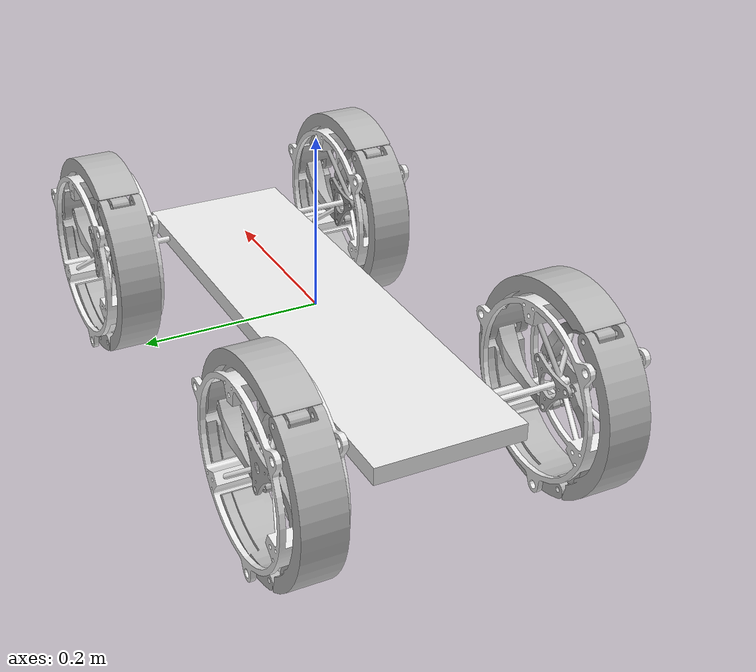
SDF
<?xml version='1.0'?>
<sdf version='1.7'>
  <model name='tryd'>
    <!-- Prevent internal collisions between leg parts to avoid jitter -->
    <self_collide>false</self_collide>

    <!-- BASE -->
    <link name='base_footprint'>
      <pose>0 0 0 0 0 0</pose>
    </link>

    <joint name='base_joint' type='fixed'>
      <parent>base_footprint</parent>
      <child>base_link</child>
    </joint>

    <link name='base_link'>
      <pose>0 0 0 0 0 0</pose>
      <inertial>
        <pose>-8.94907244384436E-06 1.56777004396414E-08 -0.0099999786979822 0 0 0</pose>
        <mass>5.51387120943428</mass>
        <inertia>
          <ixx>0.0134468927294375</ixx>
          <ixy>-2.59140603594283E-08</ixy>
          <ixz>-3.51546984955843E-08</ixz>
          <iyy>0.165475287417608</iyy>
          <iyz>-1.62022466077164E-11</iyz>
          <izz>0.178554327537039</izz>
        </inertia>
      </inertial>
      <visual name='visual'>
        <geometry>
          <mesh>
            <uri>model://tryd/meshes/base_link.STL</uri>
          </mesh>
        </geometry>
        <material>
          <script>
            <name>Gazebo/White</name>
            <uri>file://media/materials/scripts/gazebo.material</uri>
          </script>
        </material>
      </visual>
      <collision name='collision'>
        <geometry>
          <mesh>
            <uri>model://tryd/meshes/base_link.STL</uri>
          </mesh>
        </geometry>
      </collision>
    </link>

    <!-- RIGHT FRONT (RF) LEG -->
    <joint name='j2_rf' type='revolute'>
      <pose relative_to='base_link'>0.239999999999999 -0.128 -0.0100000000000003 0 0 0</pose>
      <parent>base_link</parent>
      <child>l2_rf</child>
      <axis>
        <xyz>0 1 0</xyz>
        <limit>
          <lower>-50</lower>
          <upper>50</upper>
          <effort>100</effort>
          <velocity>50</velocity>
        </limit>
      </axis>
    </joint>

    <link name='l2_rf'>
      <pose relative_to='j2_rf'>0 0 0 0 0 0</pose>
      <inertial>
        <pose>-2.08804529222562E-10 -0.0291950635463956 2.32404020325735E-11 0 0 0</pose>
        <mass>0.196608556113688</mass>
        <inertia>
          <ixx>0.000799</ixx>
          <ixy>0.000000</ixy>
          <ixz>0.000000</ixz>
          <iyy>0.001288</iyy>
          <iyz>0.000000</iyz>
          <izz>0.000799</izz>
        </inertia>
      </inertial>
      <visual name='v'>
        <geometry>
          <mesh>
            <uri>model://tryd/meshes/l2_rf.STL</uri>
          </mesh>
        </geometry>
        <material>
          <script>
            <name>Gazebo/White</name>
            <uri>file://media/materials/scripts/gazebo.material</uri>
          </script>
        </material>
      </visual>
      <collision name='c'>
        <geometry>
          <mesh>
            <uri>model://tryd/meshes/l2_rf.STL</uri>
          </mesh>
        </geometry>
      </collision>
    </link>

    <joint name='j1_rf' type='revolute'>
      <pose relative_to='l2_rf'>0 -0.021 0 0 0 0</pose>
      <parent>l2_rf</parent>
      <child>l1_rf</child>
      <axis>
        <xyz>0 1 0</xyz>
        <limit>
          <lower>-1</lower>
          <upper>1</upper>
          <effort>100</effort>
          <velocity>50</velocity>
        </limit>
      </axis>
    </joint>

    <link name='l1_rf'>
      <pose relative_to='j1_rf'>0 0 0 0 0 0</pose>
      <inertial>
        <pose>-4.9960036108132E-16 -0.0161380765502627 -2.57744127660233E-16 0 0 0</pose>
        <mass>0.0354240975198173</mass>
        <inertia>
          <ixx>0.000012</ixx>
          <ixy>0.000000</ixy>
          <ixz>0.000000</ixz>
          <iyy>0.000015</iyy>
          <iyz>0.000000</iyz>
          <izz>0.000012</izz>
        </inertia>
      </inertial>
      <visual name='v'>
        <geometry>
          <mesh>
            <uri>model://tryd/meshes/l1_rf.STL</uri>
          </mesh>
        </geometry>
        <material>
          <script>
            <name>Gazebo/Grey</name>
            <uri>file://media/materials/scripts/gazebo.material</uri>
          </script>
        </material>
      </visual>
      <collision name='c'>
        <geometry>
          <mesh>
            <uri>model://tryd/meshes/l1_rf.STL</uri>
          </mesh>
        </geometry>
      </collision>
    </link>

    <!-- RF BRANCHES L3 -->
    <joint name='j3_rf1' type='revolute'>
      <pose relative_to='l1_rf'>0.022146669767068 0 0.0202367244935637 0 0 0</pose>
      <parent>l1_rf</parent>
      <child>l3_rf1</child>
      <axis>
        <xyz>0 1 0</xyz>
        <limit>
          <lower>-1.57</lower>
          <upper>1.57</upper>
          <effort>5</effort>
          <velocity>2</velocity>
        </limit>
      </axis>
    </joint>

    <link name='l3_rf1'>
      <pose relative_to='j3_rf1'>0 0 0 0 0 0</pose>
      <inertial>
        <pose>-0.0398905245666624 -0.0140000194157354 0.0482877588732501 0 0 0</pose>
        <mass>0.0557316685279916</mass>
        <inertia>
          <ixx>0.000029</ixx>
          <ixy>0.000000</ixy>
          <ixz>-0.000032</ixz>
          <iyy>0.000071</iyy>
          <iyz>0.000000</iyz>
          <izz>0.000044</izz>
        </inertia>
      </inertial>
      <visual name='v'>
        <geometry>
          <mesh>
            <uri>model://tryd/meshes/l3_rf1.STL</uri>
          </mesh>
        </geometry>
      </visual>
      <collision name='c'>
        <geometry>
          <mesh>
            <uri>model://tryd/meshes/l3_rf1.STL</uri>
          </mesh>
        </geometry>
      </collision>
    </link>

    <joint name='j3_rf2' type='revolute'>
      <pose relative_to='l1_rf'>-0.0285988523843481 0 0.00906121638072432 0 0 0</pose>
      <parent>l1_rf</parent>
      <child>l3_rf2</child>
      <axis>
        <xyz>0 1 0</xyz>
        <limit>
          <lower>-1.57</lower>
          <upper>1.57</upper>
          <effort>5</effort>
          <velocity>2</velocity>
        </limit>
      </axis>
    </joint>

    <link name='l3_rf2'>
      <pose relative_to='j3_rf2'>0 0 0 0 0 0</pose>
      <inertial>
        <pose>-0.0218731622438092 -0.0140000036638266 -0.0586901178612239 0 0 0</pose>
        <mass>0.0557315697331534</mass>
        <inertia>
          <ixx>0.000068</ixx>
          <ixy>0.000000</ixy>
          <ixz>0.000009</ixz>
          <iyy>0.000071</iyy>
          <iyz>0.000000</iyz>
          <izz>0.000006</izz>
        </inertia>
      </inertial>
      <visual name='v'>
        <geometry>
          <mesh>
            <uri>model://tryd/meshes/l3_rf2.STL</uri>
          </mesh>
        </geometry>
      </visual>
      <collision name='c'>
        <geometry>
          <mesh>
            <uri>model://tryd/meshes/l3_rf2.STL</uri>
          </mesh>
        </geometry>
      </collision>
    </link>

    <joint name='j3_rf3' type='revolute'>
      <pose relative_to='l1_rf'>0.00645218261727812 0 -0.0292979408742882 0 0 0</pose>
      <parent>l1_rf</parent>
      <child>l3_rf3</child>
      <axis>
        <xyz>0 1 0</xyz>
        <limit>
          <lower>-1.57</lower>
          <upper>1.57</upper>
          <effort>5</effort>
          <velocity>2</velocity>
        </limit>
      </axis>
    </joint>

    <link name='l3_rf3'>
      <pose relative_to='j3_rf3'>0 0 0 0 0 0</pose>
      <inertial>
        <pose>0.0617637116997839 -0.0140000031232566 0.0104023387554542 0 0 0</pose>
        <mass>0.0557315625814883</mass>
        <inertia>
          <ixx>0.000013</ixx>
          <ixy>0.000000</ixy>
          <ixz>0.000022</ixz>
          <iyy>0.000071</iyy>
          <iyz>0.000000</iyz>
          <izz>0.000061</izz>
        </inertia>
      </inertial>
      <visual name='v'>
        <geometry>
          <mesh>
            <uri>model://tryd/meshes/l3_rf3.STL</uri>
          </mesh>
        </geometry>
      </visual>
      <collision name='c'>
        <geometry>
          <mesh>
            <uri>model://tryd/meshes/l3_rf3.STL</uri>
          </mesh>
        </geometry>
      </collision>
    </link>

    <!-- RF BRANCHES L4 -->
    <joint name='j4_rf1' type='revolute'>
      <pose relative_to='l2_rf'>-0.0833137378878261 0 0.0687227842797317 0 0 0</pose>
      <parent>l2_rf</parent>
      <child>l4_rf1</child>
      <axis>
        <xyz>0 1 0</xyz>
        <limit>
          <lower>-1.57</lower>
          <upper>1.57</upper>
          <effort>5</effort>
          <velocity>2</velocity>
        </limit>
      </axis>
    </joint>

    <link name='l4_rf1'>
      <pose relative_to='j4_rf1'>0 0 0 0 0 0</pose>
      <inertial>
        <pose>-0.00925877524108323 -0.0350000059049338 -0.0714258099295615 0 0 0</pose>
        <mass>0.505772953738006</mass>
        <inertia>
          <ixx>0.001678</ixx>
          <ixy>0.000000</ixy>
          <ixz>-0.000035</ixz>
          <iyy>0.001703</iyy>
          <iyz>0.000000</iyz>
          <izz>0.000215</izz>
        </inertia>
      </inertial>
      <visual name='v'>
        <geometry>
          <mesh>
            <uri>model://tryd/meshes/l4_rf1.STL</uri>
          </mesh>
        </geometry>
      </visual>
      <collision name='c'>
        <geometry>
          <mesh>
            <uri>model://tryd/meshes/l4_rf1.STL</uri>
          </mesh>
        </geometry>
        <surface>
          <friction>
            <ode>
              <mu>0.6</mu>
              <mu2>0.6</mu2>
            </ode>
          </friction>
        </surface>
      </collision>
    </link>

    <joint name='j4_rf2' type='revolute'>
      <pose relative_to='l2_rf'>-0.0178588080611313 0 -0.106513205634962 0 0 0</pose>
      <parent>l2_rf</parent>
      <child>l4_rf2</child>
      <axis>
        <xyz>0 1 0</xyz>
        <limit>
          <lower>-1.57</lower>
          <upper>1.57</upper>
          <effort>5</effort>
          <velocity>2</velocity>
        </limit>
      </axis>
    </joint>

    <link name='l4_rf2'>
      <pose relative_to='j4_rf2'>0 0 0 0 0 0</pose>
      <inertial>
        <pose>0.0664859496958133 -0.0350000060684984 0.0276945733610566 0 0 0</pose>
        <mass>0.505772947420474</mass>
        <inertia>
          <ixx>0.000611</ixx>
          <ixy>0.000000</ixy>
          <ixz>0.000651</ixz>
          <iyy>0.001703</iyy>
          <iyz>0.000000</iyz>
          <izz>0.001282</izz>
        </inertia>
      </inertial>
      <visual name='v'>
        <geometry>
          <mesh>
            <uri>model://tryd/meshes/l4_rf2.STL</uri>
          </mesh>
        </geometry>
      </visual>
      <collision name='c'>
        <geometry>
          <mesh>
            <uri>model://tryd/meshes/l4_rf2.STL</uri>
          </mesh>
        </geometry>
        <surface>
          <friction>
            <ode>
              <mu>0.6</mu>
              <mu2>0.6</mu2>
            </ode>
          </friction>
        </surface>
      </collision>
    </link>

    <joint name='j4_rf3' type='revolute'>
      <pose relative_to='l2_rf'>0.101172545948959 0 0.0377904213552305 0 0 0</pose>
      <parent>l2_rf</parent>
      <child>l4_rf3</child>
      <axis>
        <xyz>0 1 0</xyz>
        <limit>
          <lower>-1.57</lower>
          <upper>1.57</upper>
          <effort>5</effort>
          <velocity>2</velocity>
        </limit>
      </axis>
    </joint>

    <link name='l4_rf3'>
      <pose relative_to='j4_rf3'>0 0 0 0 0 0</pose>
      <inertial>
        <pose>-0.0572271801527385 -0.0350000060490628 0.0437312355375022 0 0 0</pose>
        <mass>0.505772946196365</mass>
        <inertia>
          <ixx>0.000551</ixx>
          <ixy>0.000000</ixy>
          <ixz>-0.000616</ixz>
          <iyy>0.001703</iyy>
          <iyz>0.000000</iyz>
          <izz>0.001342</izz>
        </inertia>
      </inertial>
      <visual name='v'>
        <geometry>
          <mesh>
            <uri>model://tryd/meshes/l4_rf3.STL</uri>
          </mesh>
        </geometry>
      </visual>
      <collision name='c'>
        <geometry>
          <mesh>
            <uri>model://tryd/meshes/l4_rf3.STL</uri>
          </mesh>
        </geometry>
        <surface>
          <friction>
            <ode>
              <mu>0.6</mu>
              <mu2>0.6</mu2>
            </ode>
          </friction>
        </surface>
      </collision>
    </link>

    <!-- LEFT FRONT (LF) LEG -->
    <joint name='j2_lf' type='revolute'>
      <pose relative_to='base_link'>0.239999999999999 0.128 -0.0100000000000002 0 0 0</pose>
      <parent>base_link</parent>
      <child>l2_lf</child>
      <axis>
        <xyz>0 1 0</xyz>
        <limit>
          <lower>-50</lower>
          <upper>50</upper>
          <effort>100</effort>
          <velocity>50</velocity>
        </limit>
      </axis>
    </joint>

    <link name='l2_lf'>
      <pose relative_to='j2_lf'>0 0 0 0 0 0</pose>
      <inertial>
        <pose>-6.09346184621273E-11 0.0291950636027025 2.85822192691364E-10 0 0 0</pose>
        <mass>0.196608558229839</mass>
        <inertia>
          <ixx>0.000799</ixx>
          <ixy>0.000000</ixy>
          <ixz>0.000000</ixz>
          <iyy>0.001288</iyy>
          <iyz>0.000000</iyz>
          <izz>0.000799</izz>
        </inertia>
      </inertial>
      <visual name='v'>
        <geometry>
          <mesh>
            <uri>model://tryd/meshes/l2_lf.STL</uri>
          </mesh>
        </geometry>
        <material>
          <script>
            <name>Gazebo/White</name>
            <uri>file://media/materials/scripts/gazebo.material</uri>
          </script>
        </material>
      </visual>
      <collision name='c'>
        <geometry>
          <mesh>
            <uri>model://tryd/meshes/l2_lf.STL</uri>
          </mesh>
        </geometry>
      </collision>
    </link>

    <joint name='j1_lf' type='revolute'>
      <pose relative_to='l2_lf'>0 0.021 0 0 0 0</pose>
      <parent>l2_lf</parent>
      <child>l1_lf</child>
      <axis>
        <xyz>0 1 0</xyz>
        <limit>
          <lower>-1</lower>
          <upper>1</upper>
          <effort>100</effort>
          <velocity>50</velocity>
        </limit>
      </axis>
    </joint>

    <link name='l1_lf'>
      <pose relative_to='j1_lf'>0 0 0 0 0 0</pose>
      <inertial>
        <pose>-2.22044604925031E-16 0.0161380765502627 -4.56316275036442E-16 0 0 0</pose>
        <mass>0.0354240975198172</mass>
        <inertia>
          <ixx>0.000012</ixx>
          <ixy>0.000000</ixy>
          <ixz>0.000000</ixz>
          <iyy>0.000015</iyy>
          <iyz>0.000000</iyz>
          <izz>0.000012</izz>
        </inertia>
      </inertial>
      <visual name='v'>
        <geometry>
          <mesh>
            <uri>model://tryd/meshes/l1_lf.STL</uri>
          </mesh>
        </geometry>
      </visual>
      <collision name='c'>
        <geometry>
          <mesh>
            <uri>model://tryd/meshes/l1_lf.STL</uri>
          </mesh>
        </geometry>
      </collision>
    </link>

    <!-- LF BRANCHES L3 -->
    <joint name='j3_lf1' type='revolute'>
      <pose relative_to='l1_lf'>0.0221395963706941 0 0.0202444627625115 0 0 0</pose>
      <parent>l1_lf</parent>
      <child>l3_lf1</child>
      <axis>
        <xyz>0 1 0</xyz>
        <limit>
          <lower>-1.57</lower>
          <upper>1.57</upper>
          <effort>5</effort>
          <velocity>2</velocity>
        </limit>
      </axis>
    </joint>

    <link name='l3_lf1'>
      <pose relative_to='j3_lf1'>0 0 0 0 0 0</pose>
      <inertial>
        <pose>-0.039890520885456 0.0139999805842647 0.0482877619143034 0 0 0</pose>
        <mass>0.0557316685279918</mass>
        <inertia>
          <ixx>0.000029</ixx>
          <ixy>0.000000</ixy>
          <ixz>-0.000032</ixz>
          <iyy>0.000071</iyy>
          <iyz>0.000000</iyz>
          <izz>0.000044</izz>
        </inertia>
      </inertial>
      <visual name='v'>
        <geometry>
          <mesh>
            <uri>model://tryd/meshes/l3_lf1.STL</uri>
          </mesh>
        </geometry>
      </visual>
      <collision name='c'>
        <geometry>
          <mesh>
            <uri>model://tryd/meshes/l3_lf1.STL</uri>
          </mesh>
        </geometry>
      </collision>
    </link>

    <joint name='j3_lf2' type='revolute'>
      <pose relative_to='l1_lf'>-0.0286020172236509 0 0.00905122150529837 0 0 0</pose>
      <parent>l1_lf</parent>
      <child>l3_lf2</child>
      <axis>
        <xyz>0 1 0</xyz>
        <limit>
          <lower>-1.57</lower>
          <upper>1.57</upper>
          <effort>5</effort>
          <velocity>2</velocity>
        </limit>
      </axis>
    </joint>

    <link name='l3_lf2'>
      <pose relative_to='j3_lf2'>0 0 0 0 0 0</pose>
      <inertial>
        <pose>-0.0218731667180357 0.0139999963361724 -0.0586901161937509 0 0 0</pose>
        <mass>0.0557315697331413</mass>
        <inertia>
          <ixx>0.000068</ixx>
          <ixy>0.000000</ixy>
          <ixz>0.000009</ixz>
          <iyy>0.000071</iyy>
          <iyz>0.000000</iyz>
          <izz>0.000006</izz>
        </inertia>
      </inertial>
      <visual name='v'>
        <geometry>
          <mesh>
            <uri>model://tryd/meshes/l3_lf2.STL</uri>
          </mesh>
        </geometry>
      </visual>
      <collision name='c'>
        <geometry>
          <mesh>
            <uri>model://tryd/meshes/l3_lf2.STL</uri>
          </mesh>
        </geometry>
      </collision>
    </link>

    <joint name='j3_lf3' type='revolute'>
      <pose relative_to='l1_lf'>0.00646242085295634 0 -0.0292956842678118 0 0 0</pose>
      <parent>l1_lf</parent>
      <child>l3_lf3</child>
      <axis>
        <xyz>0 1 0</xyz>
        <limit>
          <lower>-1.57</lower>
          <upper>1.57</upper>
          <effort>5</effort>
          <velocity>2</velocity>
        </limit>
      </axis>
    </joint>

    <link name='l3_lf3'>
      <pose relative_to='j3_lf3'>0 0 0 0 0 0</pose>
      <inertial>
        <pose>0.0617637124928111 0.0139999968767433 0.0104023340469134 0 0 0</pose>
        <mass>0.0557315625814885</mass>
        <inertia>
          <ixx>0.000013</ixx>
          <ixy>0.000000</ixy>
          <ixz>0.000022</ixz>
          <iyy>0.000071</iyy>
          <iyz>0.000000</iyz>
          <izz>0.000061</izz>
        </inertia>
      </inertial>
      <visual name='v'>
        <geometry>
          <mesh>
            <uri>model://tryd/meshes/l3_lf3.STL</uri>
          </mesh>
        </geometry>
      </visual>
      <collision name='c'>
        <geometry>
          <mesh>
            <uri>model://tryd/meshes/l3_lf3.STL</uri>
          </mesh>
        </geometry>
      </collision>
    </link>

    <!-- LF BRANCHES L4 -->
    <joint name='j4_lf1' type='revolute'>
      <pose relative_to='l2_lf'>-0.0833137378878259 0 0.068722784279732 0 0 0</pose>
      <parent>l2_lf</parent>
      <child>l4_lf1</child>
      <axis>
        <xyz>0 1 0</xyz>
        <limit>
          <lower>-1.57</lower>
          <upper>1.57</upper>
          <effort>5</effort>
          <velocity>2</velocity>
        </limit>
      </axis>
    </joint>

    <link name='l4_lf1'>
      <pose relative_to='j4_lf1'>0 0 0 0 0 0</pose>
      <inertial>
        <pose>-0.00923381104475832 0.034999994095162 -0.0714290415484533 0 0 0</pose>
        <mass>0.505772953745336</mass>
        <inertia>
          <ixx>0.001678</ixx>
          <ixy>0.000000</ixy>
          <ixz>-0.000035</ixz>
          <iyy>0.001703</iyy>
          <iyz>0.000000</iyz>
          <izz>0.000215</izz>
        </inertia>
      </inertial>
      <visual name='v'>
        <geometry>
          <mesh>
            <uri>model://tryd/meshes/l4_lf1.STL</uri>
          </mesh>
        </geometry>
      </visual>
      <collision name='c'>
        <geometry>
          <mesh>
            <uri>model://tryd/meshes/l4_lf1.STL</uri>
          </mesh>
        </geometry>
        <surface>
          <friction>
            <ode>
              <mu>0.6</mu>
              <mu2>0.6</mu2>
            </ode>
          </friction>
        </surface>
      </collision>
    </link>

    <joint name='j4_lf2' type='revolute'>
      <pose relative_to='l2_lf'>-0.0178588080611317 0 -0.106513205634961 0 0 0</pose>
      <parent>l2_lf</parent>
      <child>l4_lf2</child>
      <axis>
        <xyz>0 1 0</xyz>
        <limit>
          <lower>-1.57</lower>
          <upper>1.57</upper>
          <effort>5</effort>
          <velocity>2</velocity>
        </limit>
      </axis>
    </joint>

    <link name='l4_lf2'>
      <pose relative_to='j4_lf2'>0 0 0 0 0 0</pose>
      <inertial>
        <pose>0.0664762662590837 0.0349999939314377 0.0277178088028784 0 0 0</pose>
        <mass>0.505772947416741</mass>
        <inertia>
          <ixx>0.000611</ixx>
          <ixy>0.000000</ixy>
          <ixz>0.000651</ixz>
          <iyy>0.001703</iyy>
          <iyz>0.000000</iyz>
          <izz>0.001282</izz>
        </inertia>
      </inertial>
      <visual name='v'>
        <geometry>
          <mesh>
            <uri>model://tryd/meshes/l4_lf2.STL</uri>
          </mesh>
        </geometry>
      </visual>
      <collision name='c'>
        <geometry>
          <mesh>
            <uri>model://tryd/meshes/l4_lf2.STL</uri>
          </mesh>
        </geometry>
        <surface>
          <friction>
            <ode>
              <mu>0.6</mu>
              <mu2>0.6</mu2>
            </ode>
          </friction>
        </surface>
      </collision>
    </link>

    <joint name='j4_lf3' type='revolute'>
      <pose relative_to='l2_lf'>0.101172545948959 0 0.0377904213552303 0 0 0</pose>
      <parent>l2_lf</parent>
      <child>l4_lf3</child>
      <axis>
        <xyz>0 1 0</xyz>
        <limit>
          <lower>-1.57</lower>
          <upper>1.57</upper>
          <effort>5</effort>
          <velocity>2</velocity>
        </limit>
      </axis>
    </joint>

    <link name='l4_lf3'>
      <pose relative_to='j4_lf3'>0 0 0 0 0 0</pose>
      <inertial>
        <pose>-0.0572424609164388 0.0349999939510116 0.0437112317178428 0 0 0</pose>
        <mass>0.505772946198787</mass>
        <inertia>
          <ixx>0.000551</ixx>
          <ixy>0.000000</ixy>
          <ixz>-0.000616</ixz>
          <iyy>0.001703</iyy>
          <iyz>0.000000</iyz>
          <izz>0.001342</izz>
        </inertia>
      </inertial>
      <visual name='v'>
        <geometry>
          <mesh>
            <uri>model://tryd/meshes/l4_lf3.STL</uri>
          </mesh>
        </geometry>
      </visual>
      <collision name='c'>
        <geometry>
          <mesh>
            <uri>model://tryd/meshes/l4_lf3.STL</uri>
          </mesh>
        </geometry>
        <surface>
          <friction>
            <ode>
              <mu>0.6</mu>
              <mu2>0.6</mu2>
            </ode>
          </friction>
        </surface>
      </collision>
    </link>

    <!-- RIGHT HIND (RH) LEG -->
    <joint name='j2_rh' type='revolute'>
      <pose relative_to='base_link'>-0.24 -0.128 -0.0100000000000005 0 0 0</pose>
      <parent>base_link</parent>
      <child>l2_rh</child>
      <axis>
        <xyz>0 1 0</xyz>
        <limit>
          <lower>-50</lower>
          <upper>50</upper>
          <effort>100</effort>
          <velocity>50</velocity>
        </limit>
      </axis>
    </joint>

    <link name='l2_rh'>
      <pose relative_to='j2_rh'>0 0 0 0 0 0</pose>
      <inertial>
        <pose>-3.36830535685451E-10 -0.0291950635763487 4.28708644196799E-11 0 0 0</pose>
        <mass>0.196608557895127</mass>
        <inertia>
          <ixx>0.000799</ixx>
          <ixy>0.000000</ixy>
          <ixz>0.000000</ixz>
          <iyy>0.001288</iyy>
          <iyz>0.000000</iyz>
          <izz>0.000799</izz>
        </inertia>
      </inertial>
      <visual name='v'>
        <geometry>
          <mesh>
            <uri>model://tryd/meshes/l2_rh.STL</uri>
          </mesh>
        </geometry>
        <material>
          <script>
            <name>Gazebo/White</name>
            <uri>file://media/materials/scripts/gazebo.material</uri>
          </script>
        </material>
      </visual>
      <collision name='c'>
        <geometry>
          <mesh>
            <uri>model://tryd/meshes/l2_rh.STL</uri>
          </mesh>
        </geometry>
      </collision>
    </link>

    <joint name='j1_rh' type='revolute'>
      <pose relative_to='l2_rh'>0 -0.021 0 0 0 0</pose>
      <parent>l2_rh</parent>
      <child>l1_rh</child>
      <axis>
        <xyz>0 1 0</xyz>
        <limit>
          <lower>-1</lower>
          <upper>1</upper>
          <effort>100</effort>
          <velocity>50</velocity>
        </limit>
      </axis>
    </joint>

    <link name='l1_rh'>
      <pose relative_to='j1_rh'>0 0 0 0 0 0</pose>
      <inertial>
        <pose>3.33066907387547E-16 -0.0161380765502627 -2.59802701229211E-16 0 0 0</pose>
        <mass>0.0354240975198172</mass>
        <inertia>
          <ixx>0.000012</ixx>
          <ixy>0.000000</ixy>
          <ixz>0.000000</ixz>
          <iyy>0.000015</iyy>
          <iyz>0.000000</iyz>
          <izz>0.000012</izz>
        </inertia>
      </inertial>
      <visual name='v'>
        <geometry>
          <mesh>
            <uri>model://tryd/meshes/l1_rh.STL</uri>
          </mesh>
        </geometry>
      </visual>
      <collision name='c'>
        <geometry>
          <mesh>
            <uri>model://tryd/meshes/l1_rh.STL</uri>
          </mesh>
        </geometry>
      </collision>
    </link>

    <!-- RH BRANCHES L3 -->
    <joint name='j3_rh1' type='revolute'>
      <pose relative_to='l1_rh'>0.0221466697670692 0 0.0202367244935632 0 0 0</pose>
      <parent>l1_rh</parent>
      <child>l3_rh1</child>
      <axis>
        <xyz>0 1 0</xyz>
        <limit>
          <lower>-1.57</lower>
          <upper>1.57</upper>
          <effort>5</effort>
          <velocity>2</velocity>
        </limit>
      </axis>
    </joint>

    <link name='l3_rh1'>
      <pose relative_to='j3_rh1'>0 0 0 0 0 0</pose>
      <inertial>
        <pose>-0.0398905245666619 -0.0140000194157354 0.0482877588732504 0 0 0</pose>
        <mass>0.0557316685279918</mass>
        <inertia>
          <ixx>0.000029</ixx>
          <ixy>0.000000</ixy>
          <ixz>-0.000032</ixz>
          <iyy>0.000071</iyy>
          <iyz>0.000000</iyz>
          <izz>0.000044</izz>
        </inertia>
      </inertial>
      <visual name='v'>
        <geometry>
          <mesh>
            <uri>model://tryd/meshes/l3_rh1.STL</uri>
          </mesh>
        </geometry>
      </visual>
      <collision name='c'>
        <geometry>
          <mesh>
            <uri>model://tryd/meshes/l3_rh1.STL</uri>
          </mesh>
        </geometry>
      </collision>
    </link>

    <joint name='j3_rh2' type='revolute'>
      <pose relative_to='l1_rh'>-0.0285988523843469 0 0.00906121638072405 0 0 0</pose>
      <parent>l1_rh</parent>
      <child>l3_rh2</child>
      <axis>
        <xyz>0 1 0</xyz>
        <limit>
          <lower>-1.57</lower>
          <upper>1.57</upper>
          <effort>5</effort>
          <velocity>2</velocity>
        </limit>
      </axis>
    </joint>

    <link name='l3_rh2'>
      <pose relative_to='j3_rh2'>0 0 0 0 0 0</pose>
      <inertial>
        <pose>-0.0218731622438033 -0.0140000036638276 -0.0586901178612386 0 0 0</pose>
        <mass>0.0557315697331424</mass>
        <inertia>
          <ixx>0.000068</ixx>
          <ixy>0.000000</ixy>
          <ixz>0.000009</ixz>
          <iyy>0.000071</iyy>
          <iyz>0.000000</iyz>
          <izz>0.000006</izz>
        </inertia>
      </inertial>
      <visual name='v'>
        <geometry>
          <mesh>
            <uri>model://tryd/meshes/l3_rh2.STL</uri>
          </mesh>
        </geometry>
      </visual>
      <collision name='c'>
        <geometry>
          <mesh>
            <uri>model://tryd/meshes/l3_rh2.STL</uri>
          </mesh>
        </geometry>
      </collision>
    </link>

    <joint name='j3_rh3' type='revolute'>
      <pose relative_to='l1_rh'>0.00645218261727887 0 -0.0292979408742888 0 0 0</pose>
      <parent>l1_rh</parent>
      <child>l3_rh3</child>
      <axis>
        <xyz>0 1 0</xyz>
        <limit>
          <lower>-1.57</lower>
          <upper>1.57</upper>
          <effort>5</effort>
          <velocity>2</velocity>
        </limit>
      </axis>
    </joint>

    <link name='l3_rh3'>
      <pose relative_to='j3_rh3'>0 0 0 0 0 0</pose>
      <inertial>
        <pose>0.0617637116997811 -0.0140000031232566 0.0104023387554438 0 0 0</pose>
        <mass>0.0557315625814886</mass>
        <inertia>
          <ixx>0.000013</ixx>
          <ixy>0.000000</ixy>
          <ixz>0.000022</ixz>
          <iyy>0.000071</iyy>
          <iyz>0.000000</iyz>
          <izz>0.000061</izz>
        </inertia>
      </inertial>
      <visual name='v'>
        <geometry>
          <mesh>
            <uri>model://tryd/meshes/l3_rh3.STL</uri>
          </mesh>
        </geometry>
      </visual>
      <collision name='c'>
        <geometry>
          <mesh>
            <uri>model://tryd/meshes/l3_rh3.STL</uri>
          </mesh>
        </geometry>
      </collision>
    </link>

    <!-- RH BRANCHES L4 -->
    <joint name='j4_rh1' type='revolute'>
      <pose relative_to='l2_rh'>-0.0833137378878267 0 0.0687227842797326 0 0 0</pose>
      <parent>l2_rh</parent>
      <child>l4_rh1</child>
      <axis>
        <xyz>0 1 0</xyz>
        <limit>
          <lower>-1.57</lower>
          <upper>1.57</upper>
          <effort>5</effort>
          <velocity>2</velocity>
        </limit>
      </axis>
    </joint>

    <link name='l4_rh1'>
      <pose relative_to='j4_rh1'>0 0 0 0 0 0</pose>
      <inertial>
        <pose>-0.00925877524108371 -0.0350000059049338 -0.0714258099295591 0 0 0</pose>
        <mass>0.505772953738004</mass>
        <inertia>
          <ixx>0.001678</ixx>
          <ixy>0.000000</ixy>
          <ixz>-0.000035</ixz>
          <iyy>0.001703</iyy>
          <iyz>0.000000</iyz>
          <izz>0.000215</izz>
        </inertia>
      </inertial>
      <visual name='v'>
        <geometry>
          <mesh>
            <uri>model://tryd/meshes/l4_rh1.STL</uri>
          </mesh>
        </geometry>
      </visual>
      <collision name='c'>
        <geometry>
          <mesh>
            <uri>model://tryd/meshes/l4_rh1.STL</uri>
          </mesh>
        </geometry>
        <surface>
          <friction>
            <ode>
              <mu>0.6</mu>
              <mu2>0.6</mu2>
            </ode>
          </friction>
        </surface>
      </collision>
    </link>

    <joint name='j4_rh2' type='revolute'>
      <pose relative_to='l2_rh'>-0.0178588080611333 0 -0.106513205634961 0 0 0</pose>
      <parent>l2_rh</parent>
      <child>l4_rh2</child>
      <axis>
        <xyz>0 1 0</xyz>
        <limit>
          <lower>-1.57</lower>
          <upper>1.57</upper>
          <effort>5</effort>
          <velocity>2</velocity>
        </limit>
      </axis>
    </joint>

    <link name='l4_rh2'>
      <pose relative_to='j4_rh2'>0 0 0 0 0 0</pose>
      <inertial>
        <pose>0.0664859496958403 -0.0350000060684984 0.0276945733610724 0 0 0</pose>
        <mass>0.505772947420472</mass>
        <inertia>
          <ixx>0.000611</ixx>
          <ixy>0.000000</ixy>
          <ixz>0.000651</ixz>
          <iyy>0.001703</iyy>
          <iyz>0.000000</iyz>
          <izz>0.001282</izz>
        </inertia>
      </inertial>
      <visual name='v'>
        <geometry>
          <mesh>
            <uri>model://tryd/meshes/l4_rh2.STL</uri>
          </mesh>
        </geometry>
      </visual>
      <collision name='c'>
        <geometry>
          <mesh>
            <uri>model://tryd/meshes/l4_rh2.STL</uri>
          </mesh>
        </geometry>
        <surface>
          <friction>
            <ode>
              <mu>0.6</mu>
              <mu2>0.6</mu2>
            </ode>
          </friction>
        </surface>
      </collision>
    </link>

    <joint name='j4_rh3' type='revolute'>
      <pose relative_to='l2_rh'>0.101172545948958 0 0.03779042135523 0 0 0</pose>
      <parent>l2_rh</parent>
      <child>l4_rh3</child>
      <axis>
        <xyz>0 1 0</xyz>
        <limit>
          <lower>-1.57</lower>
          <upper>1.57</upper>
          <effort>5</effort>
          <velocity>2</velocity>
        </limit>
      </axis>
    </joint>

    <link name='l4_rh3'>
      <pose relative_to='j4_rh3'>0 0 0 0 0 0</pose>
      <inertial>
        <pose>-0.0572271801527114 -0.0350000060490628 0.0437312355374892 0 0 0</pose>
        <mass>0.505772946196363</mass>
        <inertia>
          <ixx>0.000551</ixx>
          <ixy>0.000000</ixy>
          <ixz>-0.000616</ixz>
          <iyy>0.001703</iyy>
          <iyz>0.000000</iyz>
          <izz>0.001342</izz>
        </inertia>
      </inertial>
      <visual name='v'>
        <geometry>
          <mesh>
            <uri>model://tryd/meshes/l4_rh3.STL</uri>
          </mesh>
        </geometry>
      </visual>
      <collision name='c'>
        <geometry>
          <mesh>
            <uri>model://tryd/meshes/l4_rh3.STL</uri>
          </mesh>
        </geometry>
        <surface>
          <friction>
            <ode>
              <mu>0.6</mu>
              <mu2>0.6</mu2>
            </ode>
          </friction>
        </surface>
      </collision>
    </link>

    <!-- LEFT HIND (LH) LEG -->
    <joint name='j2_lh' type='revolute'>
      <pose relative_to='base_link'>-0.239999999999999 0.128 -0.0100000000000004 0 0 0</pose>
      <parent>base_link</parent>
      <child>l2_lh</child>
      <axis>
        <xyz>0 1 0</xyz>
        <limit>
          <lower>-50</lower>
          <upper>50</upper>
          <effort>100</effort>
          <velocity>50</velocity>
        </limit>
      </axis>
    </joint>

    <link name='l2_lh'>
      <pose relative_to='j2_lh'>0 0 0 0 0 0</pose>
      <inertial>
        <pose>-6.25409724008819E-11 0.0291950635841788 3.76880211515852E-10 0 0 0</pose>
        <mass>0.196608558024231</mass>
        <inertia>
          <ixx>0.000799</ixx>
          <ixy>0.000000</ixy>
          <ixz>0.000000</ixz>
          <iyy>0.001288</iyy>
          <iyz>0.000000</iyz>
          <izz>0.000799</izz>
        </inertia>
      </inertial>
      <visual name='v'>
        <geometry>
          <mesh>
            <uri>model://tryd/meshes/l2_lh.STL</uri>
          </mesh>
        </geometry>
        <material>
          <script>
            <name>Gazebo/White</name>
            <uri>file://media/materials/scripts/gazebo.material</uri>
          </script>
        </material>
      </visual>
      <collision name='c'>
        <geometry>
          <mesh>
            <uri>model://tryd/meshes/l2_lh.STL</uri>
          </mesh>
        </geometry>
      </collision>
    </link>

    <joint name='j1_lh' type='revolute'>
      <pose relative_to='l2_lh'>0 0.021 0 0 0 0</pose>
      <parent>l2_lh</parent>
      <child>l1_lh</child>
      <axis>
        <xyz>0 1 0</xyz>
        <limit>
          <lower>-1</lower>
          <upper>1</upper>
          <effort>100</effort>
          <velocity>50</velocity>
        </limit>
      </axis>
    </joint>

    <link name='l1_lh'>
      <pose relative_to='j1_lh'>0 0 0 0 0 0</pose>
      <inertial>
        <pose>4.44089209850063E-16 0.0161380765502627 -4.43160424709541E-17 0 0 0</pose>
        <mass>0.0354240975198174</mass>
        <inertia>
          <ixx>0.000012</ixx>
          <ixy>0.000000</ixy>
          <ixz>0.000000</ixz>
          <iyy>0.000015</iyy>
          <iyz>0.000000</iyz>
          <izz>0.000012</izz>
        </inertia>
      </inertial>
      <visual name='v'>
        <geometry>
          <mesh>
            <uri>model://tryd/meshes/l1_lh.STL</uri>
          </mesh>
        </geometry>
      </visual>
      <collision name='c'>
        <geometry>
          <mesh>
            <uri>model://tryd/meshes/l1_lh.STL</uri>
          </mesh>
        </geometry>
      </collision>
    </link>

    <!-- LH BRANCHES L3 -->
    <joint name='j3_lh1' type='revolute'>
      <pose relative_to='l1_lh'>0.0221395963706951 0 0.0202444627625122 0 0 0</pose>
      <parent>l1_lh</parent>
      <child>l3_lh1</child>
      <axis>
        <xyz>0 1 0</xyz>
        <limit>
          <lower>-1.57</lower>
          <upper>1.57</upper>
          <effort>5</effort>
          <velocity>2</velocity>
        </limit>
      </axis>
    </joint>

    <link name='l3_lh1'>
      <pose relative_to='j3_lh1'>0 0 0 0 0 0</pose>
      <inertial>
        <pose>-0.0398905208854606 0.0139999805842646 0.0482877619143024 0 0 0</pose>
        <mass>0.0557316685279916</mass>
        <inertia>
          <ixx>0.000029</ixx>
          <ixy>0.000000</ixy>
          <ixz>-0.000032</ixz>
          <iyy>0.000071</iyy>
          <iyz>0.000000</iyz>
          <izz>0.000044</izz>
        </inertia>
      </inertial>
      <visual name='v'>
        <geometry>
          <mesh>
            <uri>model://tryd/meshes/l3_lh1.STL</uri>
          </mesh>
        </geometry>
      </visual>
      <collision name='c'>
        <geometry>
          <mesh>
            <uri>model://tryd/meshes/l3_lh1.STL</uri>
          </mesh>
        </geometry>
      </collision>
    </link>

    <joint name='j3_lh2' type='revolute'>
      <pose relative_to='l1_lh'>-0.02860201722365 0 0.00905122150529934 0 0 0</pose>
      <parent>l1_lh</parent>
      <child>l3_lh2</child>
      <axis>
        <xyz>0 1 0</xyz>
        <limit>
          <lower>-1.57</lower>
          <upper>1.57</upper>
          <effort>5</effort>
          <velocity>2</velocity>
        </limit>
      </axis>
    </joint>

    <link name='l3_lh2'>
      <pose relative_to='j3_lh2'>0 0 0 0 0 0</pose>
      <inertial>
        <pose>-0.0218731667180396 0.0139999963361724 -0.0586901161937471 0 0 0</pose>
        <mass>0.0557315697331413</mass>
        <inertia>
          <ixx>0.000068</ixx>
          <ixy>0.000000</ixy>
          <ixz>0.000009</ixz>
          <iyy>0.000071</iyy>
          <iyz>0.000000</iyz>
          <izz>0.000006</izz>
        </inertia>
      </inertial>
      <visual name='v'>
        <geometry>
          <mesh>
            <uri>model://tryd/meshes/l3_lh2.STL</uri>
          </mesh>
        </geometry>
      </visual>
      <collision name='c'>
        <geometry>
          <mesh>
            <uri>model://tryd/meshes/l3_lh2.STL</uri>
          </mesh>
        </geometry>
      </collision>
    </link>

    <joint name='j3_lh3' type='revolute'>
      <pose relative_to='l1_lh'>0.00646242085295679 0 -0.0292956842678109 0 0 0</pose>
      <parent>l1_lh</parent>
      <child>l3_lh3</child>
      <axis>
        <xyz>0 1 0</xyz>
        <limit>
          <lower>-1.57</lower>
          <upper>1.57</upper>
          <effort>5</effort>
          <velocity>2</velocity>
        </limit>
      </axis>
    </joint>

    <link name='l3_lh3'>
      <pose relative_to='j3_lh3'>0 0 0 0 0 0</pose>
      <inertial>
        <pose>0.0617637124928112 0.0139999968767434 0.0104023340469128 0 0 0</pose>
        <mass>0.0557315625814885</mass>
        <inertia>
          <ixx>0.000013</ixx>
          <ixy>0.000000</ixy>
          <ixz>0.000022</ixz>
          <iyy>0.000071</iyy>
          <iyz>0.000000</iyz>
          <izz>0.000061</izz>
        </inertia>
      </inertial>
      <visual name='v'>
        <geometry>
          <mesh>
            <uri>model://tryd/meshes/l3_lh3.STL</uri>
          </mesh>
        </geometry>
      </visual>
      <collision name='c'>
        <geometry>
          <mesh>
            <uri>model://tryd/meshes/l3_lh3.STL</uri>
          </mesh>
        </geometry>
      </collision>
    </link>

    <!-- LH BRANCHES L4 -->
    <joint name='j4_lh1' type='revolute'>
      <pose relative_to='l2_lh'>-0.0833137378878265 0 0.0687227842797328 0 0 0</pose>
      <parent>l2_lh</parent>
      <child>l4_lh1</child>
      <axis>
        <xyz>0 1 0</xyz>
        <limit>
          <lower>-1.57</lower>
          <upper>1.57</upper>
          <effort>5</effort>
          <velocity>2</velocity>
        </limit>
      </axis>
    </joint>

    <link name='l4_lh1'>
      <pose relative_to='j4_lh1'>0 0 0 0 0 0</pose>
      <inertial>
        <pose>-0.00923381104475846 0.0349999940951619 -0.0714290415484631 0 0 0</pose>
        <mass>0.505772953745337</mass>
        <inertia>
          <ixx>0.001678</ixx>
          <ixy>0.000000</ixy>
          <ixz>-0.000035</ixz>
          <iyy>0.001703</iyy>
          <iyz>0.000000</iyz>
          <izz>0.000215</izz>
        </inertia>
      </inertial>
      <visual name='v'>
        <geometry>
          <mesh>
            <uri>model://tryd/meshes/l4_lh1.STL</uri>
          </mesh>
        </geometry>
      </visual>
      <collision name='c'>
        <geometry>
          <mesh>
            <uri>model://tryd/meshes/l4_lh1.STL</uri>
          </mesh>
        </geometry>
        <surface>
          <friction>
            <ode>
              <mu>0.6</mu>
              <mu2>0.6</mu2>
            </ode>
          </friction>
        </surface>
      </collision>
    </link>

    <joint name='j4_lh2' type='revolute'>
      <pose relative_to='l2_lh'>-0.0178588080611337 0 -0.106513205634961 0 0 0</pose>
      <parent>l2_lh</parent>
      <child>l4_lh2</child>
      <axis>
        <xyz>0 1 0</xyz>
        <limit>
          <lower>-1.57</lower>
          <upper>1.57</upper>
          <effort>5</effort>
          <velocity>2</velocity>
        </limit>
      </axis>
    </joint>

    <link name='l4_lh2'>
      <pose relative_to='j4_lh2'>0 0 0 0 0 0</pose>
      <inertial>
        <pose>0.0664762662590742 0.0349999939314377 0.0277178088028722 0 0 0</pose>
        <mass>0.50577294741674</mass>
        <inertia>
          <ixx>0.000611</ixx>
          <ixy>0.000000</ixy>
          <ixz>0.000651</ixz>
          <iyy>0.001703</iyy>
          <iyz>0.000000</iyz>
          <izz>0.001282</izz>
        </inertia>
      </inertial>
      <visual name='v'>
        <geometry>
          <mesh>
            <uri>model://tryd/meshes/l4_lh2.STL</uri>
          </mesh>
        </geometry>
      </visual>
      <collision name='c'>
        <geometry>
          <mesh>
            <uri>model://tryd/meshes/l4_lh2.STL</uri>
          </mesh>
        </geometry>
        <surface>
          <friction>
            <ode>
              <mu>0.6</mu>
              <mu2>0.6</mu2>
            </ode>
          </friction>
        </surface>
      </collision>
    </link>

    <joint name='j4_lh3' type='revolute'>
      <pose relative_to='l2_lh'>0.101172545948959 0 0.0377904213552296 0 0 0</pose>
      <parent>l2_lh</parent>
      <child>l4_lh3</child>
      <axis>
        <xyz>0 1 0</xyz>
        <limit>
          <lower>-1.57</lower>
          <upper>1.57</upper>
          <effort>5</effort>
          <velocity>2</velocity>
        </limit>
      </axis>
    </joint>

    <link name='l4_lh3'>
      <pose relative_to='j4_lh3'>0 0 0 0 0 0</pose>
      <inertial>
        <pose>-0.0572424609164394 0.0349999939510118 0.0437112317178444 0 0 0</pose>
        <mass>0.505772946198786</mass>
        <inertia>
          <ixx>0.000551</ixx>
          <ixy>0.000000</ixy>
          <ixz>-0.000616</ixz>
          <iyy>0.001703</iyy>
          <iyz>0.000000</iyz>
          <izz>0.001342</izz>
        </inertia>
      </inertial>
      <visual name='v'>
        <geometry>
          <mesh>
            <uri>model://tryd/meshes/l4_lh3.STL</uri>
          </mesh>
        </geometry>
      </visual>
      <collision name='c'>
        <geometry>
          <mesh>
            <uri>model://tryd/meshes/l4_lh3.STL</uri>
          </mesh>
        </geometry>
        <surface>
          <friction>
            <ode>
              <mu>0.6</mu>
              <mu2>0.6</mu2>
            </ode>
          </friction>
        </surface>
      </collision>
    </link>

    <!-- IMU -->
    <link name="imu_link">
      <pose relative_to='base_link'>0 0 0 0 0 0</pose>
      <inertial>
        <mass>0.001</mass>
        <inertia>
          <ixx>0.0001</ixx>
          <ixy>0</ixy>
          <ixz>0</ixz>
          <iyy>0.0001</iyy>
          <iyz>0</iyz>
          <izz>0.0001</izz>
        </inertia>
      </inertial>
      <visual name="v">
        <geometry>
          <box>
            <size>0.001 0.001 0.001</size>
          </box>
        </geometry>
      </visual>
      <sensor name="imu_sensor" type="imu">
        <always_on>1</always_on>
        <update_rate>400</update_rate>
        <visualize>1</visualize>
        <topic>trunk_imu</topic>
      </sensor>
    </link>
    <joint name="imu_joint" type="fixed">
      <parent>base_link</parent>
      <child>imu_link</child>
    </joint>

    <plugin filename="gz-sim-joint-state-publisher-system" name="gz::sim::systems::JointStatePublisher"></plugin>

  </model>
</sdf>
